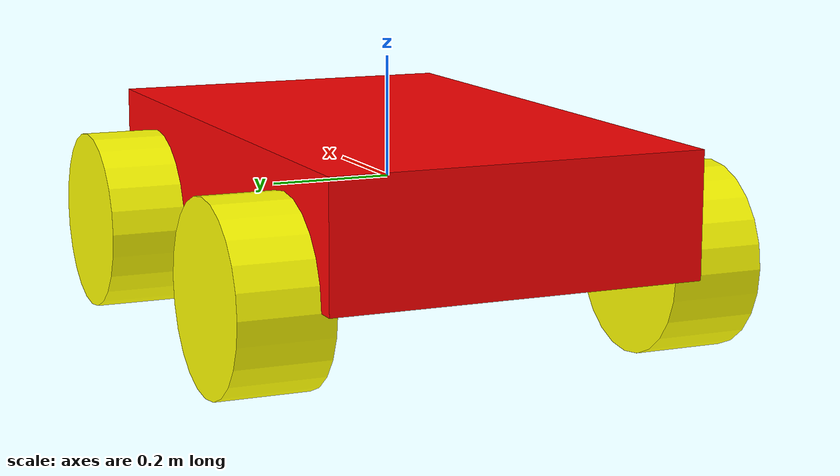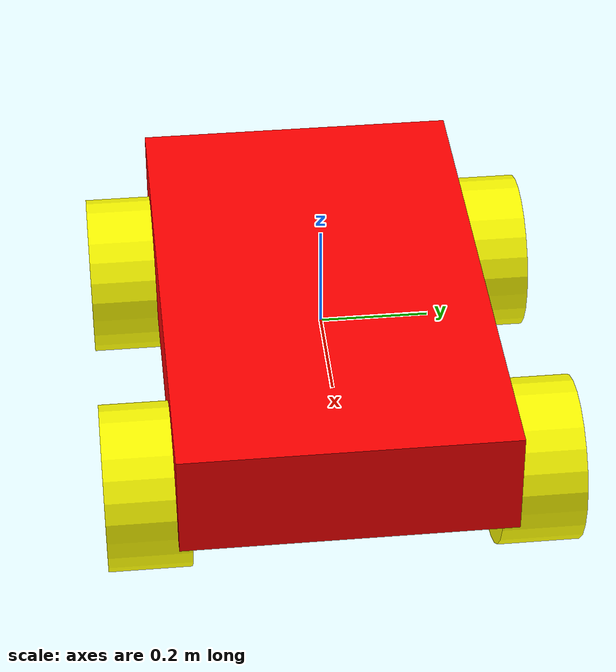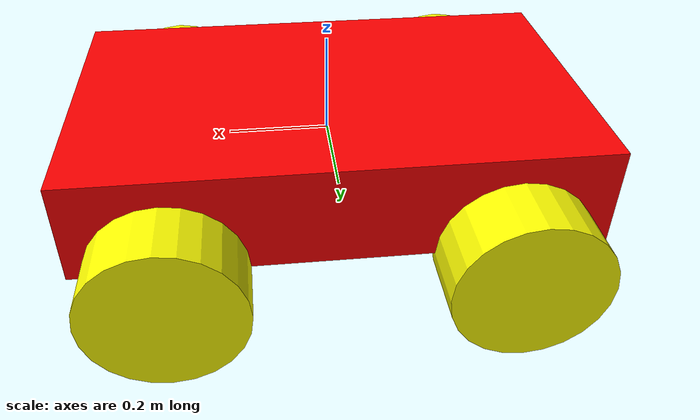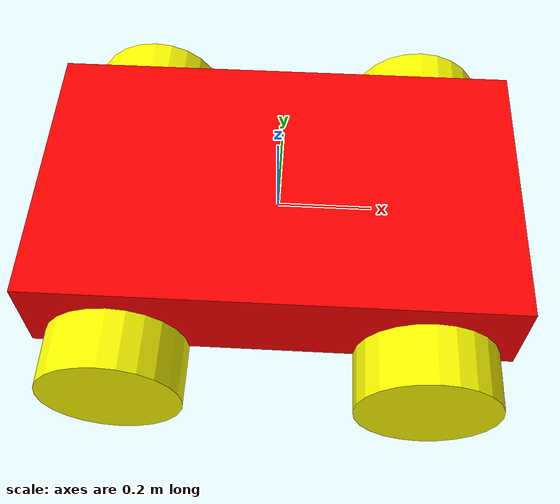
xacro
<?xml version="1.0"?>
<robot name="robot_one" xmlns:xacro="http://www.ros.org/wiki/xacro">

    <!-- Body dimensions / wheel dimensions / material density / pi constant / Robot body & wheel mass-->

    <xacro:property name="base_x" value="1"/>
    <xacro:property name="base_y" value="0.6"/>
    <xacro:property name="base_z" value="0.2"/>

    <xacro:property name="wheel_radius" value="0.15"/>
    <xacro:property name="wheel_length" value="0.1"/>
    <xacro:property name="wheel_location" value="-0.1"/>

    <xacro:property name="base_density" value="2710.0"/>
    <xacro:property name="wheel_density" value="2710.0"/> <!-- in kg/m3-->

    <xacro:property name="body_mass" value="${base_density * base_x * base_y * base_z}"/>
    <xacro:property name="wheel_mass" value="${wheel_density * pi * wheel_radius * wheel_radius * wheel_length}"/>

    <!-- MOI -->
    <xacro:property name="wheel_Iz" value="${0.5 * wheel_mass * wheel_radius * wheel_radius}"/>
    <xacro:property name="wheel_I" value="${(1 / 12) * wheel_mass * (3 * wheel_radius * wheel_radius + wheel_length * wheel_length)}"/>

    <xacro:macro name="inertial_wheel">
        <inertial>
            <origin xyz="0.0 0.0 0.0" rpy="0.0 0.0 0.0"/>
            <mass value="${wheel_mass}"/>
            <inertia ixx="${wheel_I}" ixy="0.0" ixz="0.0" iyy="${wheel_I}" iyz="0.0" izz="${wheel_Iz}"/>
        </inertial>
    </xacro:macro>

    <!-- motion control drive -->
    <xacro:include filename="$(find robot_one)/model/robot.gazebo"/>

    <material name="yellow">
        <color rgba="1 1 0 1"/>
    </material>
    <material name="red">
        <color rgba="1 0 0 1"/>
    </material>

    <!-- Links and Joints -->

    <link name="body_link">
        <visual>
            <origin xyz="0 0 0" rpy="0.0 0.0 0.0"/>
            <geometry>
                <box size=" ${base_x} ${base_y} ${base_z}"/>
            </geometry>
            <material name="red"/>
        </visual>
        <collision>
            <origin xyz="0 0 0" rpy="0.0 0.0 0.0"/>
            <geometry>
                <box size="${base_x} ${base_y} ${base_z}"/>
            </geometry>
            <material>
                <color rgba="0 1 0 1"/>
            </material>
        </collision>
        <inertial>
            <origin xyz="0.0 0.0 0.0" rpy="0.0 0.0 0.0"/>
            <mass value="${body_mass}"/>
            <inertia
            ixx="${(1 / 12) * body_mass * (base_y * base_y + base_z * base_z) }"
            ixy="0"
            ixz="0"
            iyy="${(1 / 12) * body_mass * (base_x * base_x + base_z * base_z) }"
            iyz="0.0"
            izz="${(1 / 12) * body_mass * (base_y * base_y + base_x * base_x) }" />
        </inertial>
    </link>

 <joint name="wheel_1_joint" type="continuous">
        <origin xyz="${-base_x / 2 + 1.2 * wheel_radius} ${-base_y / 2 - wheel_length / 2} ${wheel_location}" rpy="0.0 0.0 0.0"/>
        <parent link="body_link"/>
        <child link="wheel_1_link"/>
        <axis xyz="0.0 1.0 0.0"/>
        <limit effort="1000.0" velocity="1000.0"/>
        <dynamics damping="1.0" friction="1.0"/>
    </joint>

    <link name="wheel_1_link">
        <visual>
            <origin rpy="${pi/2} 0.0 0.0" xyz="0.0 0.0 0.0"/>
            <geometry>
                <cylinder radius="${wheel_radius}" length="${wheel_radius}"/>
            </geometry>
            <material name="yellow"/>
        </visual>
        <collision>
            <origin rpy="${pi/2} 0.0 0.0" xyz="0.0 0.0 0.0"/>
            <geometry>
                <cylinder radius="${wheel_radius}" length="${wheel_radius}"/>
            </geometry>
        </collision>
        <xacro:inertial_wheel/>
    </link>

    <!-- wheel 2  -->
    <joint name="wheel_2_joint" type="continuous">
        <origin xyz="${-base_x / 2 + 1.2 * wheel_radius} ${base_y / 2 + wheel_length / 2} ${wheel_location}" rpy="0.0 0.0 0.0"/>
        <parent link="body_link"/>
        <child link="wheel_2_link"/>
        <axis xyz="0.0 1.0 0.0"/>
        <limit effort="1000.0" velocity="1000.0"/>
        <dynamics damping="1.0" friction="1.0"/>
    </joint>

    <link name="wheel_2_link">
        <visual>
            <origin rpy="${pi/2} 0.0 0.0" xyz="0.0 0.0 0.0"/>
            <geometry>
                <cylinder radius="${wheel_radius}" length="${wheel_radius}"/>
            </geometry>
            <material name="yellow"/>
        </visual>
        <collision>
            <origin rpy="${pi/2} 0.0 0.0" xyz="0.0 0.0 0.0"/>
            <geometry>
                <cylinder radius="${wheel_radius}" length="${wheel_radius}"/>
            </geometry>
        </collision>
        <xacro:inertial_wheel/>
    </link>

    <!-- wheel 3  -->
    <joint name="wheel_3_joint" type="continuous">
        <origin xyz="${base_x / 2 - 1.2 * wheel_radius} ${-base_y / 2 - wheel_length / 2} ${wheel_location}" rpy="0.0 0.0 0.0"/>
        <parent link="body_link"/>
        <child link="wheel_3_link"/>
        <axis xyz="0.0 1.0 0.0"/>
        <limit effort="1000.0" velocity="1000.0"/>
        <dynamics damping="1.0" friction="1.0"/>
    </joint>

    <link name="wheel_3_link">
        <visual>
            <origin rpy="${pi/2} 0.0 0.0" xyz="0.0 0.0 0.0"/>
            <geometry>
                <cylinder radius="${wheel_radius}" length="${wheel_radius}"/>
            </geometry>
            <material name="yellow"/>
        </visual>
        <collision>
            <origin rpy="${pi/2} 0.0 0.0" xyz="0.0 0.0 0.0"/>
            <geometry>
                <cylinder radius="${wheel_radius}" length="${wheel_radius}"/>
            </geometry>
        </collision>
        <xacro:inertial_wheel/>
    </link>

    <!-- wheel 4  -->
    <joint name="wheel_4_joint" type="continuous">
        <origin xyz="${base_x / 2 - 1.2 * wheel_radius} ${base_y / 2 + wheel_length / 2} ${wheel_location}" rpy="0.0 0.0 0.0"/>
        <parent link="body_link"/>
        <child link="wheel_4_link"/>
        <axis xyz="0.0 1.0 0.0"/>
        <limit effort="1000.0" velocity="1000.0"/>
        <dynamics damping="1.0" friction="1.0"/>
    </joint>

    <link name="wheel_4_link">
        <visual>
            <origin rpy="${pi/2} 0.0 0.0" xyz="0.0 0.0 0.0"/>
            <geometry>
                <cylinder radius="${wheel_radius}" length="${wheel_radius}"/>
            </geometry>
            <material name="yellow"/>
        </visual>
        <collision>
            <origin rpy="${pi/2} 0.0 0.0" xyz="0.0 0.0 0.0"/>
            <geometry>
                <cylinder radius="${wheel_radius}" length="${wheel_radius}"/>
            </geometry>
        </collision>
        <xacro:inertial_wheel/>
    </link>

</robot>
